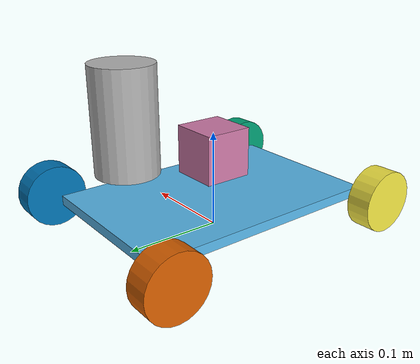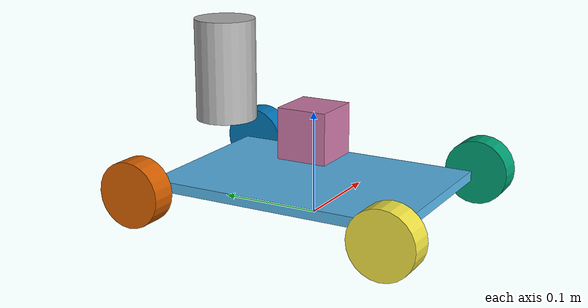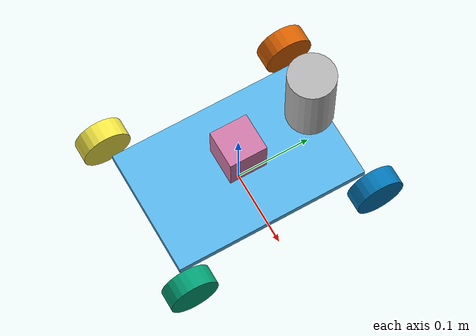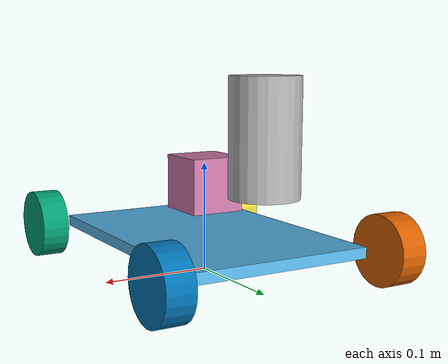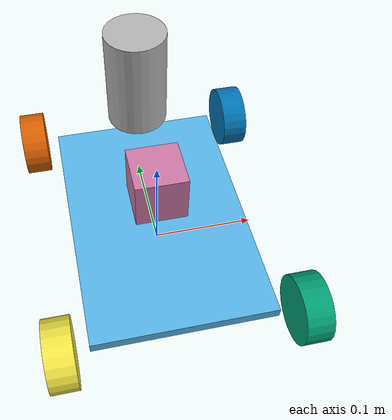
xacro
<?xml version="1.0"?>

<robot xmlns:xacro="http://www.ros.org/wiki/xacro" name="smartcar">

  <!--Xacro properties and macros-->
  <xacro:property name="wheel_diameter" value="0.064" />
  <xacro:property name="wheel_width" value="0.025" />
  <xacro:property name="wheelbase_length" value="0.257" />
  <xacro:property name="wheelbase_width" value="0.17" />

  <xacro:property name="LiDAR_radius" value="0.03" />

  <xacro:macro name="wheel" params="prefix parent x y z">
    <link name="${prefix}_wheel">
      <inertial>
        <mass value="0.2"/>
        <inertia ixx="0.0001" ixy="0.0" ixz="0.0" iyy="0.0001" iyz="0.0" izz="0.0002"/>
        <origin xyz="0 0 0"/>
      </inertial>
      <visual>
        <geometry>
          <cylinder radius="${wheel_diameter/2}" length="${wheel_width}"/>
        </geometry>
      </visual>
      <collision>
        <origin xyz="0 0 0" rpy="0 0 0"/>
        <geometry>
          <cylinder radius="${wheel_diameter/2}" length="${wheel_width}"/>
        </geometry>
      </collision>
    </link>
    <joint name="${prefix}_wheel_joint" type="continuous">
      <parent link="${parent}" />
      <child link="${prefix}_wheel"/>
      <origin xyz="${x} ${y} ${z}" rpy="0 ${pi/2} 0"/>
    </joint>
  </xacro:macro>

  <!--Body-->
  <link name="base_link">

  </link>

  <link name="chassis_link">
    <inertial>
      <mass value="1.0"/>
      <inertia ixx="0.01" ixy="0.0" ixz="0.0" iyy="0.01" iyz="0.0" izz="0.02"/>
      <origin xyz="0 0 1"/>
    </inertial>
    <visual>
      <geometry>
        <box size="${wheelbase_width} ${wheelbase_length}  0.01"/>
      </geometry>
    </visual>
  </link>

  <joint name="chassis_joint" type="fixed">
    <parent link="base_link" />
    <child link="chassis_link"/>
    <origin xyz="0 0 ${wheel_diameter / 2}"/>
  </joint>

  <xacro:wheel prefix="front_left" parent="base_link" x="${wheelbase_width / 2 + wheel_width}" y="-${wheelbase_length / 2}" z="${wheel_diameter / 2}"/>
  <xacro:wheel prefix="front_right" parent="base_link" x="-${wheelbase_width / 2 + wheel_width}" y="-${wheelbase_length / 2}" z="${wheel_diameter / 2}"/>
  <xacro:wheel prefix="back_left" parent="base_link" x="${wheelbase_width / 2 + wheel_width}" y="${wheelbase_length / 2}" z="${wheel_diameter / 2}"/>
  <xacro:wheel prefix="back_right" parent="base_link" x="-${wheelbase_width / 2 + wheel_width}" y="${wheelbase_length / 2}" z="${wheel_diameter / 2}"/>

  <!--Sensors-->

  <!--IMU-->
  <link name="imu_link">
    <visual>
      <geometry>
        <box size="0.05 0.05 0.05"/>
      </geometry>
    </visual>

    <collision>
      <origin xyz="0 0 0" rpy="0 0 0"/>
      <geometry>
          <box size="0.1 0.1 0.1"/>
      </geometry>
    </collision>

    <inertial>
      <mass value="0.05"/>
      <inertia ixx="0.01" ixy="0.0" ixz="0.0" iyy="0.01" iyz="0.0" izz="0.02"/>
      <origin xyz="0 0 0"/>
    </inertial>

  </link>

  <joint name="imu_joint" type="fixed">
    <parent link="base_link" />
    <child link="imu_link"/>
    <origin xyz="0 0 ${wheel_diameter / 2 + 0.05}"/>
  </joint>

  <gazebo reference="imu_link">
    <sensor type="imu" name="imu_sensor">
      <always_on>true</always_on>
      <update_rate>30.0</update_rate>
      <plugin name="gazebo_ros_imu" filename="libgazebo_ros_imu.so">
        <ros>
          <namespace>/imu</namespace>
          <remapping>~/out:=/imu/data</remapping>
        </ros>
      </plugin>
    </sensor>
  </gazebo>

  <!-- LiDAR -->

  <link name="sllidar_base_link">
    <visual>
      <geometry>
        <cylinder radius="${LiDAR_radius}" length="0.1"/>
      </geometry>
    </visual>

    <collision>
      <origin xyz="0 0 0" rpy="0 0 0"/>
      <geometry>
        <cylinder radius="${LiDAR_radius}" length="0.1"/>
      </geometry>
    </collision>

    <inertial>
      <mass value="0.05"/>
      <inertia ixx="0.01" ixy="0.0" ixz="0.0" iyy="0.01" iyz="0.0" izz="0.02"/>
      <origin xyz="0 0 0"/>
    </inertial>
  </link>

  <joint name="lidar_joint" type="fixed">
    <parent link="base_link" />
    <child link="sllidar_base_link"/>
    <origin xyz="0 ${wheelbase_length / 2 - LiDAR_radius} ${wheel_diameter / 2 + 0.1}"/>
  </joint>

  <gazebo reference="sllidar_base_link">
    <sensor name="lidar" type="ray">
      <pose> 0 0 0 0 0 0 </pose>
      <visualize>true</visualize>
      <update_rate>10</update_rate>
      <ray>
          <scan>
              <horizontal>
                  <samples>360</samples>
                  <min_angle>-${pi}</min_angle>
                  <max_angle>${pi}</max_angle>
              </horizontal>
          </scan>
          <range>
              <min>0.3</min>
              <max>12</max>
          </range>
      </ray>
      <plugin name="lidar_plugin" filename="libgazebo_ros_ray_sensor.so">
          <ros>
              <argument>~/out:=scan</argument>
          </ros>
          <output_type>sensor_msgs/LaserScan</output_type>
          <frame_name>sllidar_base_link</frame_name>
      </plugin>
  </sensor>

  </gazebo>

  <gazebo>
    <plugin name="car_gazebo_plugin" filename="libcar_gazebo_plugin.so"></plugin>
  </gazebo>

</robot>
